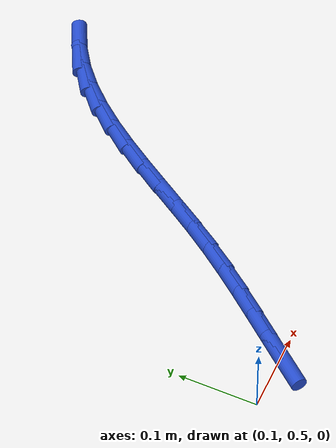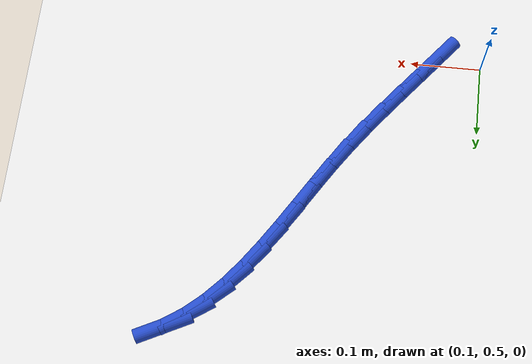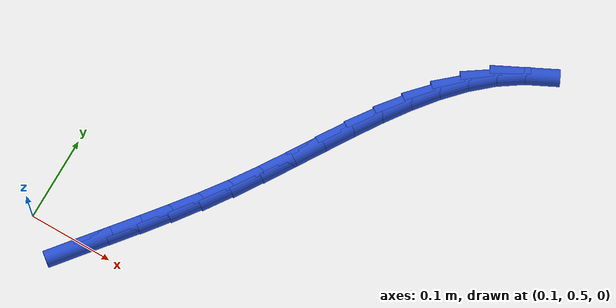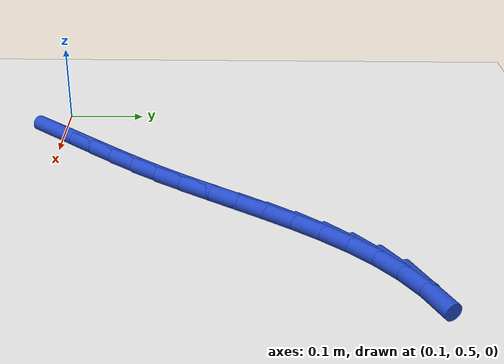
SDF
<sdf version="1.6">
 <world name="default">
  <model name="ground_plane">
   <static>1</static>
   <link name="link">
    <collision name="collision">
     <geometry><plane><normal>0 0 1</normal><size>100 100</size></plane></geometry>
     <surface><friction><ode><mu>100</mu><mu2>50</mu2></ode></friction></surface>
    </collision>
    <visual name="visual">
     <cast_shadows>0</cast_shadows>
     <geometry><plane><normal>0 0 1</normal><size>100 100</size></plane></geometry>
     <material>
      <script><uri>file://media/materials/scripts/gazebo.material</uri><name>Gazebo/WhiteGlow</name></script>
     </material>
    </visual>
   </link>
  </model>
  <model name="line">
   <link name="link_15">
    <pose>0.16481492538685505 0.4944986419153648 0.01 0 1.57 0.892656306667746</pose>
    <collision name="collision">
     <geometry><cylinder><radius>0.01</radius><length>0.08</length></cylinder></geometry>
    </collision>
    <visual name="visual">
     <material>
      <script><name>Gazebo/Blue</name><uri>file://media/materials/scripts/gazebo.material</uri></script>
     </material>
     <geometry><cylinder><radius>0.01</radius><length>0.08</length></cylinder></geometry>
    </visual>
   </link>
   <link name="link_16">
    <pose>0.18740646448125392 0.5225421221598434 0.01 0 1.57 0.8892235811790805</pose>
    <collision name="collision">
     <geometry><cylinder><radius>0.01</radius><length>0.08</length></cylinder></geometry>
    </collision>
    <visual name="visual">
     <material>
      <script><name>Gazebo/Blue</name><uri>file://media/materials/scripts/gazebo.material</uri></script>
     </material>
     <geometry><cylinder><radius>0.01</radius><length>0.08</length></cylinder></geometry>
    </visual>
   </link>
   <link name="link_17">
    <pose>0.2102917738625458 0.5507515035870779 0.01 0 1.57 0.8954027101737718</pose>
    <collision name="collision">
     <geometry><cylinder><radius>0.01</radius><length>0.08</length></cylinder></geometry>
    </collision>
    <visual name="visual">
     <material>
      <script><name>Gazebo/Blue</name><uri>file://media/materials/scripts/gazebo.material</uri></script>
     </material>
     <geometry><cylinder><radius>0.01</radius><length>0.08</length></cylinder></geometry>
    </visual>
   </link>
   <link name="link_18">
    <pose>0.23318703381220296 0.5793323179115075 0.01 0 1.57 0.9109698212362631</pose>
    <collision name="collision">
     <geometry><cylinder><radius>0.01</radius><length>0.08</length></cylinder></geometry>
    </collision>
    <visual name="visual">
     <material>
      <script><name>Gazebo/Blue</name><uri>file://media/materials/scripts/gazebo.material</uri></script>
     </material>
     <geometry><cylinder><radius>0.01</radius><length>0.08</length></cylinder></geometry>
    </visual>
   </link>
   <link name="link_19">
    <pose>0.2558084246116976 0.6084900968475708 0.01 0 1.57 0.9357166348205601</pose>
    <collision name="collision">
     <geometry><cylinder><radius>0.01</radius><length>0.08</length></cylinder></geometry>
    </collision>
    <visual name="visual">
     <material>
      <script><name>Gazebo/Blue</name><uri>file://media/materials/scripts/gazebo.material</uri></script>
     </material>
     <geometry><cylinder><radius>0.01</radius><length>0.08</length></cylinder></geometry>
    </visual>
   </link>
   <link name="link_20">
    <pose>0.2778721265425023 0.6384303721097069 0.01 0 1.57 0.9688860292136666</pose>
    <collision name="collision">
     <geometry><cylinder><radius>0.01</radius><length>0.08</length></cylinder></geometry>
    </collision>
    <visual name="visual">
     <material>
      <script><name>Gazebo/Blue</name><uri>file://media/materials/scripts/gazebo.material</uri></script>
     </material>
     <geometry><cylinder><radius>0.01</radius><length>0.08</length></cylinder></geometry>
    </visual>
   </link>
   <link name="link_21">
    <pose>0.29910762861970175 0.6693433356759139 0.01 0 1.57 0.9981026038053255</pose>
    <collision name="collision">
     <geometry><cylinder><radius>0.01</radius><length>0.08</length></cylinder></geometry>
    </collision>
    <visual name="visual">
     <material>
      <script><name>Gazebo/Blue</name><uri>file://media/materials/scripts/gazebo.material</uri></script>
     </material>
     <geometry><cylinder><radius>0.01</radius><length>0.08</length></cylinder></geometry>
    </visual>
   </link>
   <link name="link_22">
    <pose>0.3195570271918366 0.7010588661958075 0.01 0 1.57 1.0114778019806516</pose>
    <collision name="collision">
     <geometry><cylinder><radius>0.01</radius><length>0.08</length></cylinder></geometry>
    </collision>
    <visual name="visual">
     <material>
      <script><name>Gazebo/Blue</name><uri>file://media/materials/scripts/gazebo.material</uri></script>
     </material>
     <geometry><cylinder><radius>0.01</radius><length>0.08</length></cylinder></geometry>
    </visual>
   </link>
   <link name="link_23">
    <pose>0.33957868394489893 0.7330423127504555 0.01 0 1.57 1.0087228652466187</pose>
    <collision name="collision">
     <geometry><cylinder><radius>0.01</radius><length>0.08</length></cylinder></geometry>
    </collision>
    <visual name="visual">
     <material>
      <script><name>Gazebo/Blue</name><uri>file://media/materials/scripts/gazebo.material</uri></script>
     </material>
     <geometry><cylinder><radius>0.01</radius><length>0.08</length></cylinder></geometry>
    </visual>
   </link>
   <link name="link_24">
    <pose>0.3595450009303327 0.7647428414006764 0.01 0 1.57 0.9894275158267191</pose>
    <collision name="collision">
     <geometry><cylinder><radius>0.01</radius><length>0.08</length></cylinder></geometry>
    </collision>
    <visual name="visual">
     <material>
      <script><name>Gazebo/Blue</name><uri>file://media/materials/scripts/gazebo.material</uri></script>
     </material>
     <geometry><cylinder><radius>0.01</radius><length>0.08</length></cylinder></geometry>
    </visual>
   </link>
   <link name="link_25">
    <pose>0.3798283801995818 0.7956096182072877 0.01 0 1.57 0.9524779871922515</pose>
    <collision name="collision">
     <geometry><cylinder><radius>0.01</radius><length>0.08</length></cylinder></geometry>
    </collision>
    <visual name="visual">
     <material>
      <script><name>Gazebo/Blue</name><uri>file://media/materials/scripts/gazebo.material</uri></script>
     </material>
     <geometry><cylinder><radius>0.01</radius><length>0.08</length></cylinder></geometry>
    </visual>
   </link>
   <link name="link_26">
    <pose>0.40080122380409017 0.8250918092311078 0.01 0 1.57 0.8961153088186018</pose>
    <collision name="collision">
     <geometry><cylinder><radius>0.01</radius><length>0.08</length></cylinder></geometry>
    </collision>
    <visual name="visual">
     <material>
      <script><name>Gazebo/Blue</name><uri>file://media/materials/scripts/gazebo.material</uri></script>
     </material>
     <geometry><cylinder><radius>0.01</radius><length>0.08</length></cylinder></geometry>
    </visual>
   </link>
   <link name="link_27">
    <pose>0.42283593379530154 0.8526385805329542 0.01 0 1.57 0.8181817099947388</pose>
    <collision name="collision">
     <geometry><cylinder><radius>0.01</radius><length>0.08</length></cylinder></geometry>
    </collision>
    <visual name="visual">
     <material>
      <script><name>Gazebo/Blue</name><uri>file://media/materials/scripts/gazebo.material</uri></script>
     </material>
     <geometry><cylinder><radius>0.01</radius><length>0.08</length></cylinder></geometry>
    </visual>
   </link>
   <link name="link_28">
    <pose>0.44630491222466007 0.8776990981736454 0.01 0 1.57 0.7167476057622834</pose>
    <collision name="collision">
     <geometry><cylinder><radius>0.01</radius><length>0.08</length></cylinder></geometry>
    </collision>
    <visual name="visual">
     <material>
      <script><name>Gazebo/Blue</name><uri>file://media/materials/scripts/gazebo.material</uri></script>
     </material>
     <geometry><cylinder><radius>0.01</radius><length>0.08</length></cylinder></geometry>
    </visual>
   </link>
   <link name="link_29">
    <pose>0.47158056114360947 0.8997225282139991 0.01 0 1.57 0.5917236856192647</pose>
    <collision name="collision">
     <geometry><cylinder><radius>0.01</radius><length>0.08</length></cylinder></geometry>
    </collision>
    <visual name="visual">
     <material>
      <script><name>Gazebo/Blue</name><uri>file://media/materials/scripts/gazebo.material</uri></script>
     </material>
     <geometry><cylinder><radius>0.01</radius><length>0.08</length></cylinder></geometry>
    </visual>
   </link>
   <link name="link_30">
    <pose>0.4990286189794824 0.9181691314795822 0.01 0 1.57 0.4617291212682363</pose>
    <collision name="collision">
     <geometry><cylinder><radius>0.01</radius><length>0.08</length></cylinder></geometry>
    </collision>
    <visual name="visual">
     <material>
      <script><name>Gazebo/Blue</name><uri>file://media/materials/scripts/gazebo.material</uri></script>
     </material>
     <geometry><cylinder><radius>0.01</radius><length>0.08</length></cylinder></geometry>
    </visual>
   </link>
  </model>
 </world>
</sdf>
